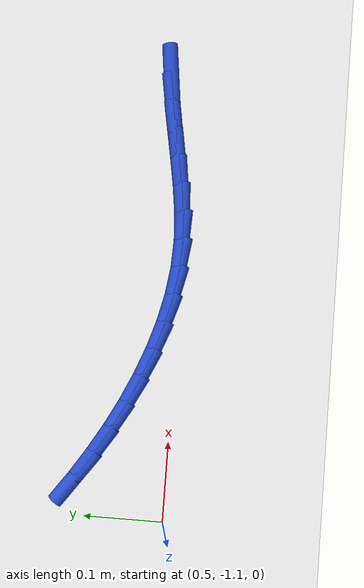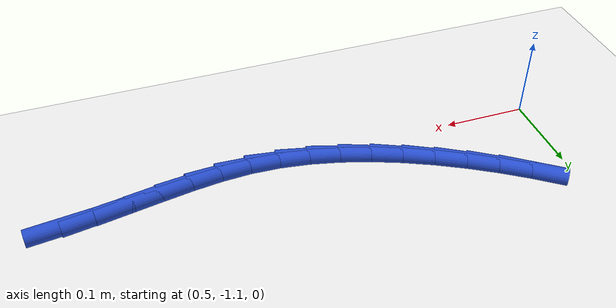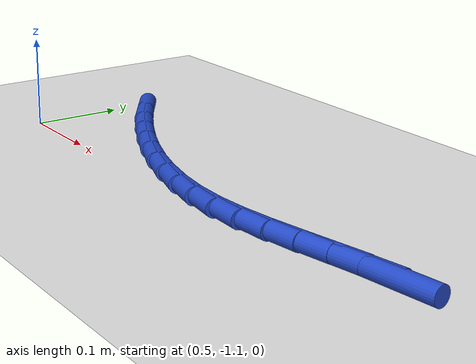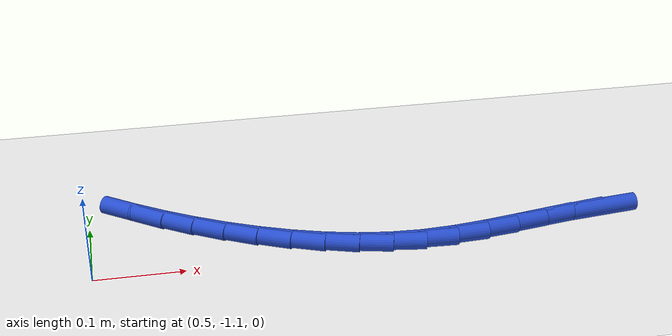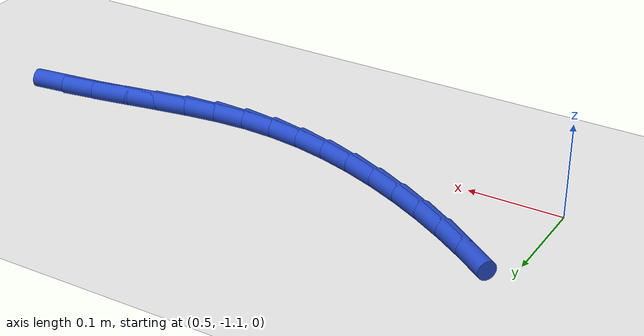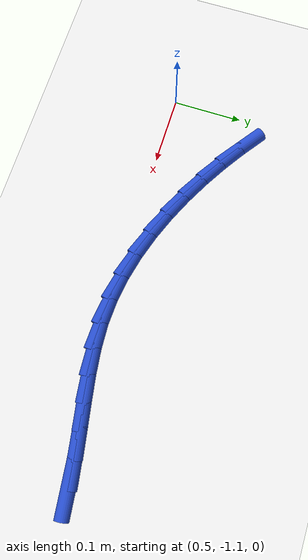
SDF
<sdf version="1.6">
 <world name="default">
  <model name="ground_plane">
   <static>1</static>
   <link name="link">
    <collision name="collision">
     <geometry><plane><normal>0 0 1</normal><size>100 100</size></plane></geometry>
     <surface><friction><ode><mu>100</mu><mu2>50</mu2></ode></friction></surface>
    </collision>
    <visual name="visual">
     <cast_shadows>0</cast_shadows>
     <geometry><plane><normal>0 0 1</normal><size>100 100</size></plane></geometry>
     <material>
      <script><uri>file://media/materials/scripts/gazebo.material</uri><name>Gazebo/WhiteGlow</name></script>
     </material>
    </visual>
   </link>
  </model>
  <model name="line">
   <link name="link_143">
    <pose>1.070162828012485 -1.067958055696153 0.01 0 1.57 0.11939097544916648</pose>
    <collision name="collision">
     <geometry><cylinder><radius>0.01</radius><length>0.08</length></cylinder></geometry>
    </collision>
    <visual name="visual">
     <material>
      <script><name>Gazebo/Blue</name><uri>file://media/materials/scripts/gazebo.material</uri></script>
     </material>
     <geometry><cylinder><radius>0.01</radius><length>0.08</length></cylinder></geometry>
    </visual>
   </link>
   <link name="link_144">
    <pose>1.0332304110468638 -1.072388523949127 0.01 0 1.57 0.16288015283338997</pose>
    <collision name="collision">
     <geometry><cylinder><radius>0.01</radius><length>0.08</length></cylinder></geometry>
    </collision>
    <visual name="visual">
     <material>
      <script><name>Gazebo/Blue</name><uri>file://media/materials/scripts/gazebo.material</uri></script>
     </material>
     <geometry><cylinder><radius>0.01</radius><length>0.08</length></cylinder></geometry>
    </visual>
   </link>
   <link name="link_145">
    <pose>0.9971214249905823 -1.0783225304517345 0.01 0 1.57 0.17935327996861644</pose>
    <collision name="collision">
     <geometry><cylinder><radius>0.01</radius><length>0.08</length></cylinder></geometry>
    </collision>
    <visual name="visual">
     <material>
      <script><name>Gazebo/Blue</name><uri>file://media/materials/scripts/gazebo.material</uri></script>
     </material>
     <geometry><cylinder><radius>0.01</radius><length>0.08</length></cylinder></geometry>
    </visual>
   </link>
   <link name="link_146">
    <pose>0.9616159461034348 -1.0847597260647714 0.01 0 1.57 0.16754085764104473</pose>
    <collision name="collision">
     <geometry><cylinder><radius>0.01</radius><length>0.08</length></cylinder></geometry>
    </collision>
    <visual name="visual">
     <material>
      <script><name>Gazebo/Blue</name><uri>file://media/materials/scripts/gazebo.material</uri></script>
     </material>
     <geometry><cylinder><radius>0.01</radius><length>0.08</length></cylinder></geometry>
    </visual>
   </link>
   <link name="link_147">
    <pose>0.9264940506452168 -1.0906997616490315 0.01 0 1.57 0.12640341944721323</pose>
    <collision name="collision">
     <geometry><cylinder><radius>0.01</radius><length>0.08</length></cylinder></geometry>
    </collision>
    <visual name="visual">
     <material>
      <script><name>Gazebo/Blue</name><uri>file://media/materials/scripts/gazebo.material</uri></script>
     </material>
     <geometry><cylinder><radius>0.01</radius><length>0.08</length></cylinder></geometry>
    </visual>
   </link>
   <link name="link_148">
    <pose>0.8915358148757238 -1.0951422880653106 0.01 0 1.57 0.0554819380779773</pose>
    <collision name="collision">
     <geometry><cylinder><radius>0.01</radius><length>0.08</length></cylinder></geometry>
    </collision>
    <visual name="visual">
     <material>
      <script><name>Gazebo/Blue</name><uri>file://media/materials/scripts/gazebo.material</uri></script>
     </material>
     <geometry><cylinder><radius>0.01</radius><length>0.08</length></cylinder></geometry>
    </visual>
   </link>
   <link name="link_149">
    <pose>0.8565213150547508 -1.0970869561744037 0.01 0 1.57 -0.041451991326701694</pose>
    <collision name="collision">
     <geometry><cylinder><radius>0.01</radius><length>0.08</length></cylinder></geometry>
    </collision>
    <visual name="visual">
     <material>
      <script><name>Gazebo/Blue</name><uri>file://media/materials/scripts/gazebo.material</uri></script>
     </material>
     <geometry><cylinder><radius>0.01</radius><length>0.08</length></cylinder></geometry>
    </visual>
   </link>
   <link name="link_150">
    <pose>0.8212601412679098 -1.0956244725623918 0.01 0 1.57 -0.1391516568802211</pose>
    <collision name="collision">
     <geometry><cylinder><radius>0.01</radius><length>0.08</length></cylinder></geometry>
    </collision>
    <visual name="visual">
     <material>
      <script><name>Gazebo/Blue</name><uri>file://media/materials/scripts/gazebo.material</uri></script>
     </material>
     <geometry><cylinder><radius>0.01</radius><length>0.08</length></cylinder></geometry>
    </visual>
   </link>
   <link name="link_151">
    <pose>0.7858264370164528 -1.0906617410541668 0.01 0 1.57 -0.22567341497893798</pose>
    <collision name="collision">
     <geometry><cylinder><radius>0.01</radius><length>0.08</length></cylinder></geometry>
    </collision>
    <visual name="visual">
     <material>
      <script><name>Gazebo/Blue</name><uri>file://media/materials/scripts/gazebo.material</uri></script>
     </material>
     <geometry><cylinder><radius>0.01</radius><length>0.08</length></cylinder></geometry>
    </visual>
   </link>
   <link name="link_152">
    <pose>0.7504338853862854 -1.0825361714403852 0.01 0 1.57 -0.3020284522979422</pose>
    <collision name="collision">
     <geometry><cylinder><radius>0.01</radius><length>0.08</length></cylinder></geometry>
    </collision>
    <visual name="visual">
     <material>
      <script><name>Gazebo/Blue</name><uri>file://media/materials/scripts/gazebo.material</uri></script>
     </material>
     <geometry><cylinder><radius>0.01</radius><length>0.08</length></cylinder></geometry>
    </visual>
   </link>
   <link name="link_153">
    <pose>0.7152974256152773 -1.0715890489777042 0.01 0 1.57 -0.36954724951847473</pose>
    <collision name="collision">
     <geometry><cylinder><radius>0.01</radius><length>0.08</length></cylinder></geometry>
    </collision>
    <visual name="visual">
     <material>
      <script><name>Gazebo/Blue</name><uri>file://media/materials/scripts/gazebo.material</uri></script>
     </material>
     <geometry><cylinder><radius>0.01</radius><length>0.08</length></cylinder></geometry>
    </visual>
   </link>
   <link name="link_154">
    <pose>0.6806319969413014 -1.0581616589227805 0.01 0 1.57 -0.42957874048626243</pose>
    <collision name="collision">
     <geometry><cylinder><radius>0.01</radius><length>0.08</length></cylinder></geometry>
    </collision>
    <visual name="visual">
     <material>
      <script><name>Gazebo/Blue</name><uri>file://media/materials/scripts/gazebo.material</uri></script>
     </material>
     <geometry><cylinder><radius>0.01</radius><length>0.08</length></cylinder></geometry>
    </visual>
   </link>
   <link name="link_155">
    <pose>0.6466525386022289 -1.042595286532271 0.01 0 1.57 -0.48339560568988504</pose>
    <collision name="collision">
     <geometry><cylinder><radius>0.01</radius><length>0.08</length></cylinder></geometry>
    </collision>
    <visual name="visual">
     <material>
      <script><name>Gazebo/Blue</name><uri>file://media/materials/scripts/gazebo.material</uri></script>
     </material>
     <geometry><cylinder><radius>0.01</radius><length>0.08</length></cylinder></geometry>
    </visual>
   </link>
   <link name="link_156">
    <pose>0.6135739898359317 -1.0252312170628326 0.01 0 1.57 -0.5322945515117229</pose>
    <collision name="collision">
     <geometry><cylinder><radius>0.01</radius><length>0.08</length></cylinder></geometry>
    </collision>
    <visual name="visual">
     <material>
      <script><name>Gazebo/Blue</name><uri>file://media/materials/scripts/gazebo.material</uri></script>
     </material>
     <geometry><cylinder><radius>0.01</radius><length>0.08</length></cylinder></geometry>
    </visual>
   </link>
   <link name="link_157">
    <pose>0.5815969673762853 -1.0063966409731548 0.01 0 1.57 -0.5784676154599161</pose>
    <collision name="collision">
     <geometry><cylinder><radius>0.01</radius><length>0.08</length></cylinder></geometry>
    </collision>
    <visual name="visual">
     <material>
      <script><name>Gazebo/Blue</name><uri>file://media/materials/scripts/gazebo.material</uri></script>
     </material>
     <geometry><cylinder><radius>0.01</radius><length>0.08</length></cylinder></geometry>
    </visual>
   </link>
   <link name="link_158">
    <pose>0.5507644249639946 -0.9862635923305352 0.01 0 1.57 -0.6227110666171352</pose>
    <collision name="collision">
     <geometry><cylinder><radius>0.01</radius><length>0.08</length></cylinder></geometry>
    </collision>
    <visual name="visual">
     <material>
      <script><name>Gazebo/Blue</name><uri>file://media/materials/scripts/gazebo.material</uri></script>
     </material>
     <geometry><cylinder><radius>0.01</radius><length>0.08</length></cylinder></geometry>
    </visual>
   </link>
  </model>
 </world>
</sdf>
